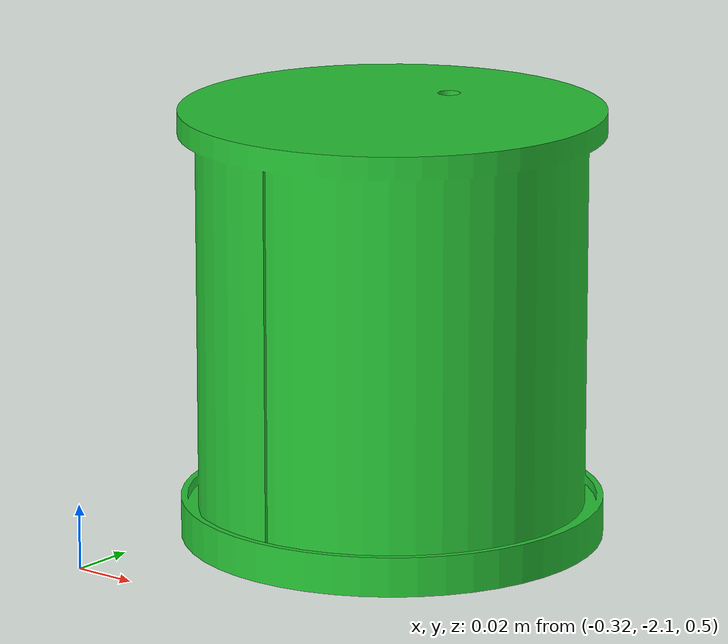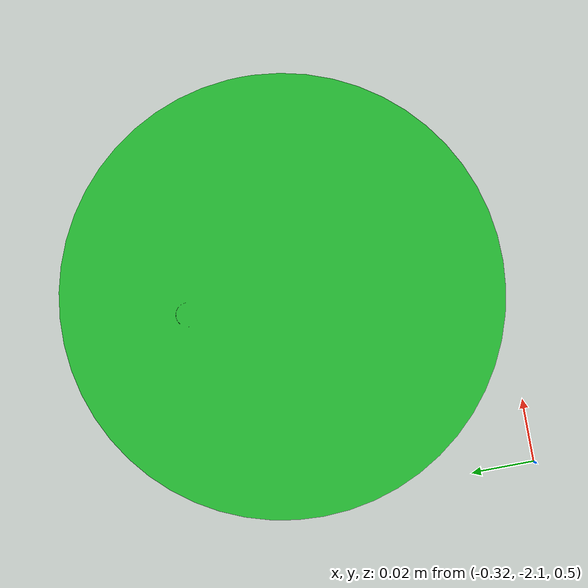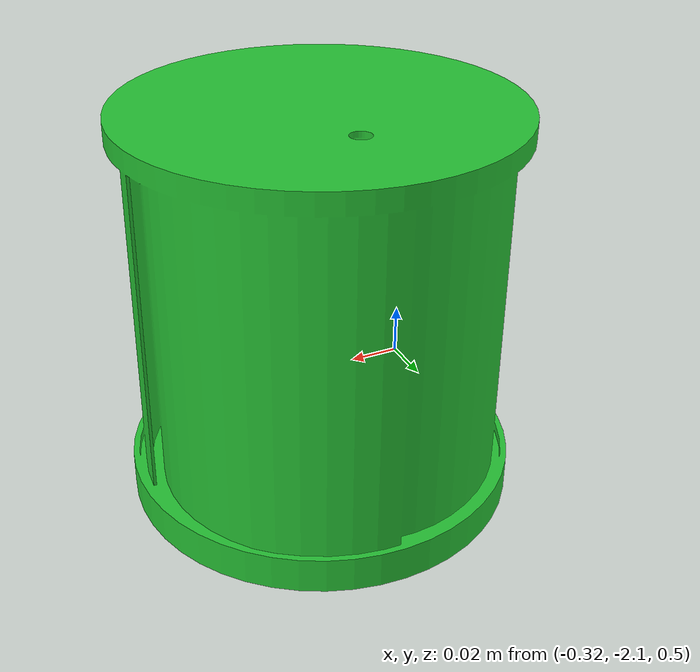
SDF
<?xml version="1.0" encoding="UTF-8"?>
<sdf version="1.9">
  <model name="dock_led_1_green">
    <static>true</static>
    <link name="dock_led_1_green_link">
      <visual name="dock_led_1_green_visual">
        <pose>-0.254 -2.032 0.508 1.57 0 0</pose>
        <geometry>
          <mesh>
            <scale>1 1 1</scale>
            <uri>model://robotx26/docking_task/led/green_led.obj</uri>
          </mesh>
        </geometry>
        <material>
          <ambient>0.08 0.4 0.1 1</ambient>
          <diffuse>0.1529 0.7686 0.2078 1</diffuse>
          <specular>0.8 0.8 0.8 1</specular>
          <emissive>0.03 0.5 0.05 1</emissive>
        </material>
      </visual>
    </link>
  </model>
</sdf>
